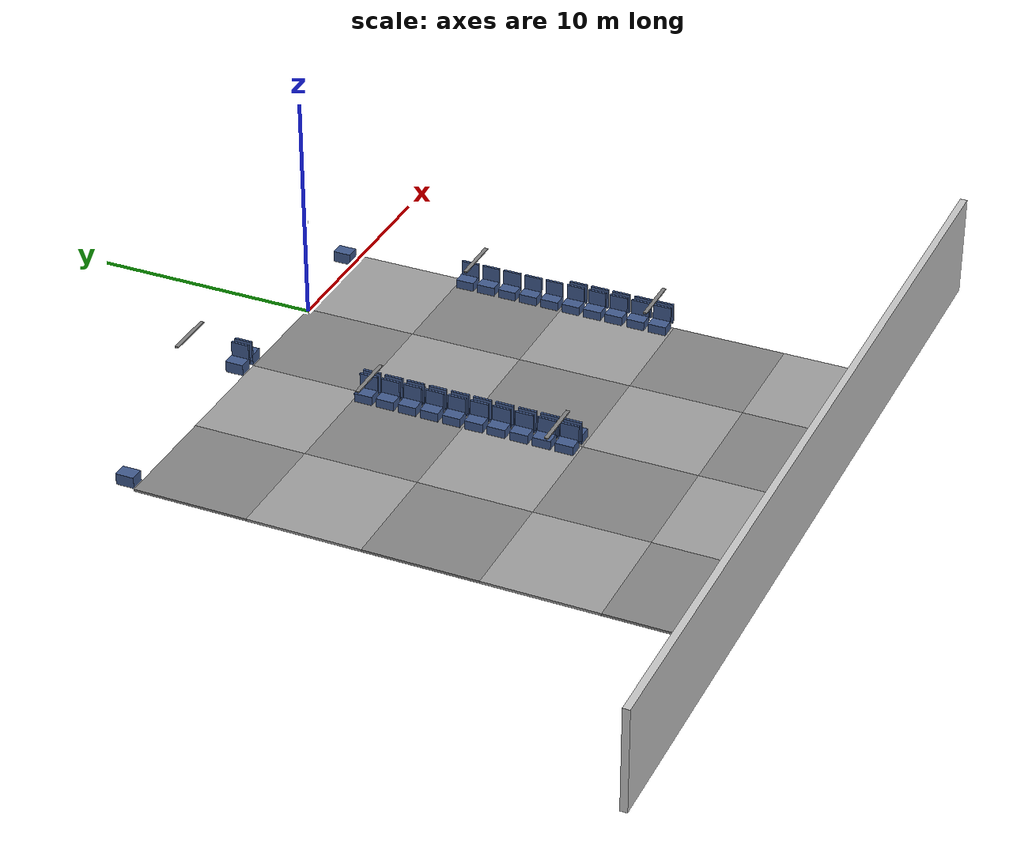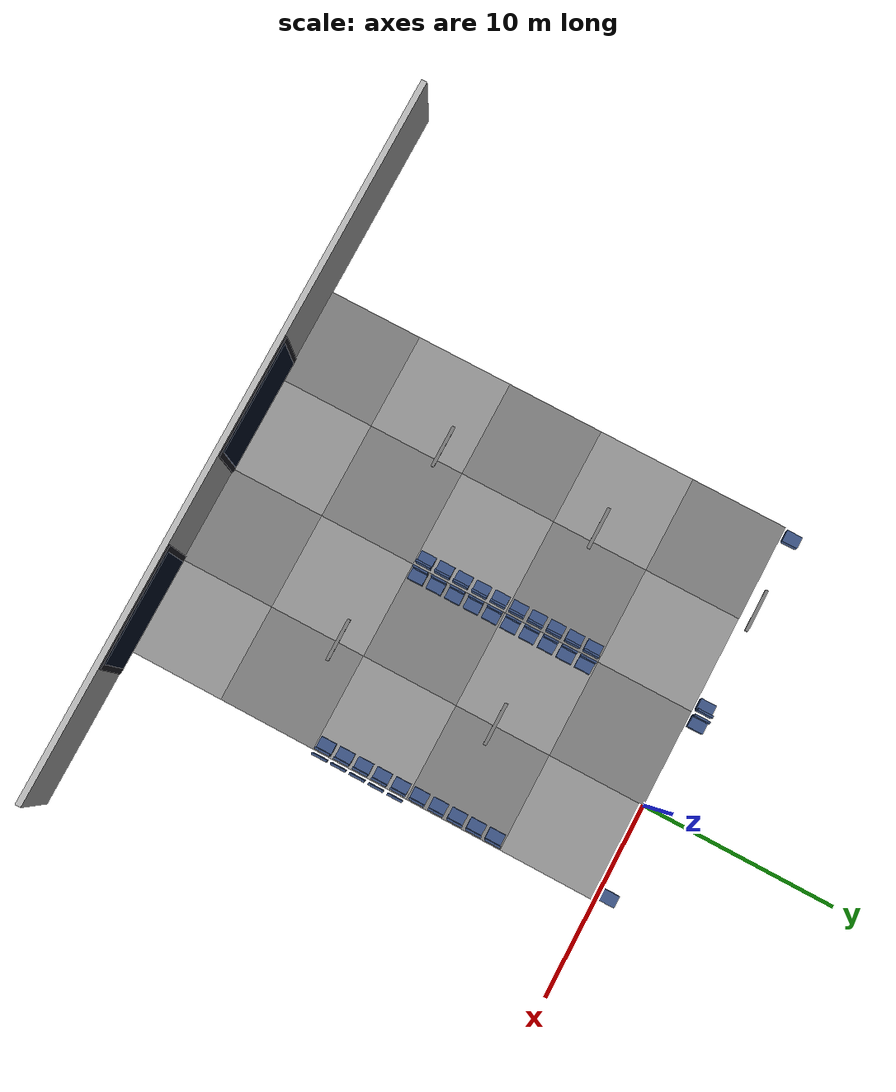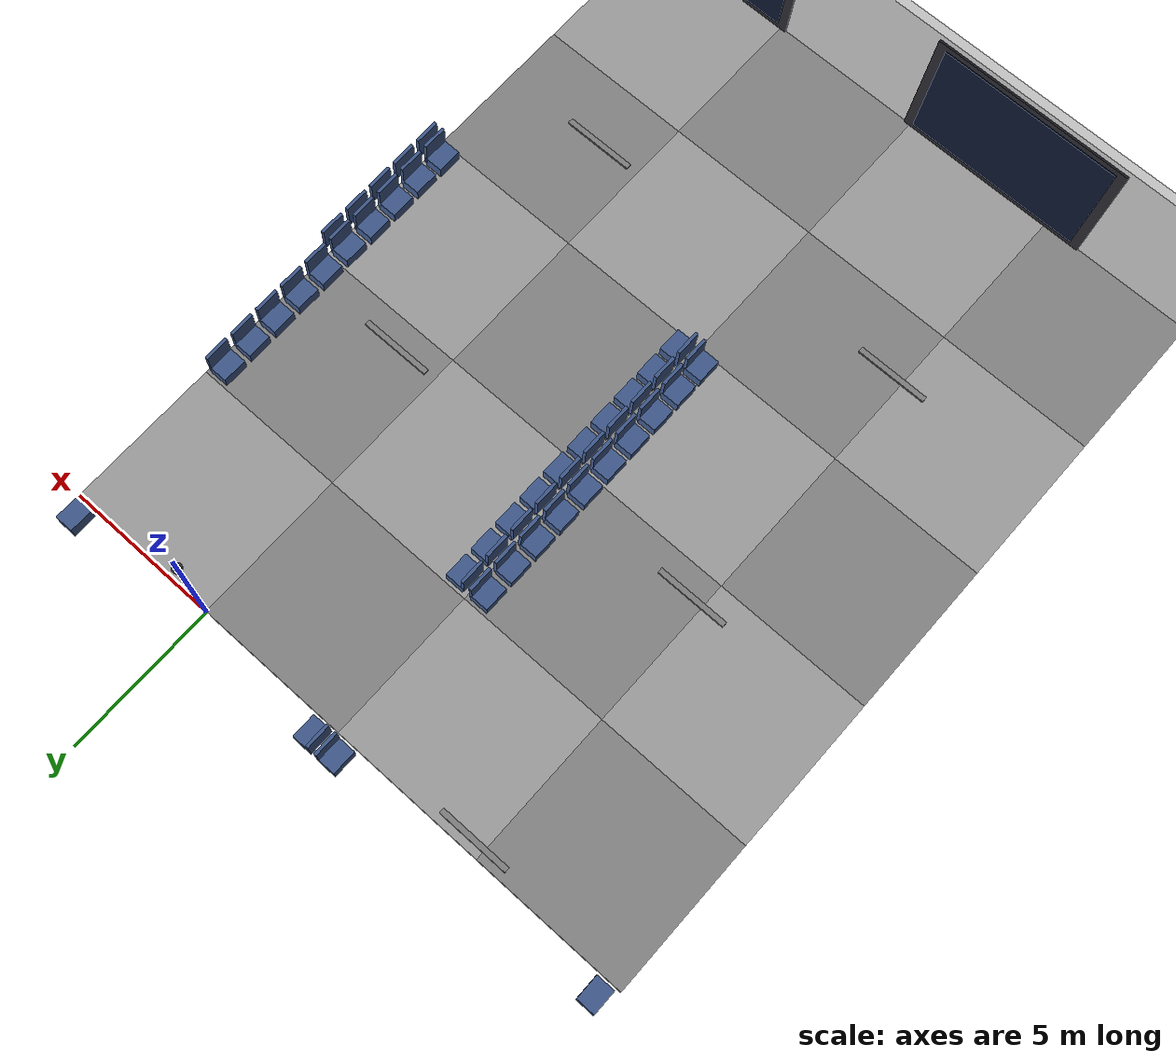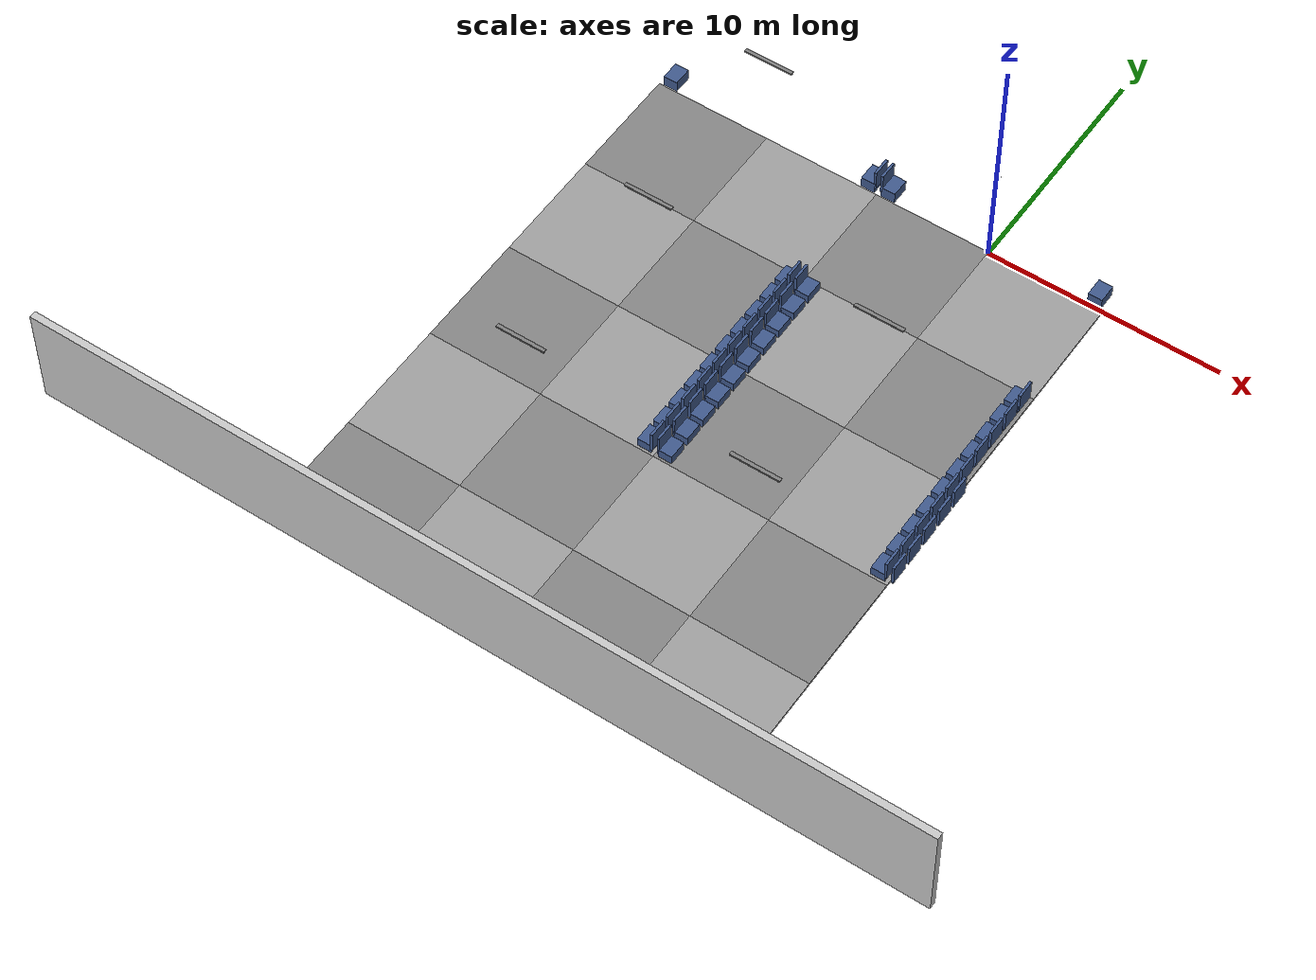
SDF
<sdf version="1.10">
 <world name="my_world">
  <model name="floor">
   <static>true</static>
   <pose>0 0 0.05 0 0 0</pose>
   <link name="link">
    <collision name="col">
     <geometry><box><size>50 50 0.1</size></box></geometry>
     <surface>
      <friction><ode><mu>0.8</mu><mu2>0.8</mu2></ode></friction>
      <contact><ode><kp>1000000.0</kp><kd>1.0</kd><max_vel>0.1</max_vel><min_depth>0.001</min_depth></ode></contact>
     </surface>
    </collision>
   </link>
  </model>
  <model name="vtile_2_0">
   <static>true</static>
   <pose>-12.5 -22.5 0.05 0 0 0</pose>
   <link name="link">
    <visual name="vis">
     <geometry><box><size>5 5 0.1</size></box></geometry>
     <material><ambient>0.52 0.52 0.52 1</ambient><diffuse>0.52 0.52 0.52 1</diffuse></material>
    </visual>
   </link>
  </model>
  <model name="vtile_2_1">
   <static>true</static>
   <pose>-12.5 -17.5 0.05 0 0 0</pose>
   <link name="link">
    <visual name="vis">
     <geometry><box><size>5 5 0.1</size></box></geometry>
     <material><ambient>0.62 0.62 0.62 1</ambient><diffuse>0.62 0.62 0.62 1</diffuse></material>
    </visual>
   </link>
  </model>
  <model name="vtile_2_2">
   <static>true</static>
   <pose>-12.5 -12.5 0.05 0 0 0</pose>
   <link name="link">
    <visual name="vis">
     <geometry><box><size>5 5 0.1</size></box></geometry>
     <material><ambient>0.52 0.52 0.52 1</ambient><diffuse>0.52 0.52 0.52 1</diffuse></material>
    </visual>
   </link>
  </model>
  <model name="vtile_2_3">
   <static>true</static>
   <pose>-12.5 -7.5 0.05 0 0 0</pose>
   <link name="link">
    <visual name="vis">
     <geometry><box><size>5 5 0.1</size></box></geometry>
     <material><ambient>0.62 0.62 0.62 1</ambient><diffuse>0.62 0.62 0.62 1</diffuse></material>
    </visual>
   </link>
  </model>
  <model name="vtile_2_4">
   <static>true</static>
   <pose>-12.5 -2.5 0.05 0 0 0</pose>
   <link name="link">
    <visual name="vis">
     <geometry><box><size>5 5 0.1</size></box></geometry>
     <material><ambient>0.52 0.52 0.52 1</ambient><diffuse>0.52 0.52 0.52 1</diffuse></material>
    </visual>
   </link>
  </model>
  <model name="vtile_3_0">
   <static>true</static>
   <pose>-7.5 -22.5 0.05 0 0 0</pose>
   <link name="link">
    <visual name="vis">
     <geometry><box><size>5 5 0.1</size></box></geometry>
     <material><ambient>0.62 0.62 0.62 1</ambient><diffuse>0.62 0.62 0.62 1</diffuse></material>
    </visual>
   </link>
  </model>
  <model name="vtile_3_1">
   <static>true</static>
   <pose>-7.5 -17.5 0.05 0 0 0</pose>
   <link name="link">
    <visual name="vis">
     <geometry><box><size>5 5 0.1</size></box></geometry>
     <material><ambient>0.52 0.52 0.52 1</ambient><diffuse>0.52 0.52 0.52 1</diffuse></material>
    </visual>
   </link>
  </model>
  <model name="vtile_3_2">
   <static>true</static>
   <pose>-7.5 -12.5 0.05 0 0 0</pose>
   <link name="link">
    <visual name="vis">
     <geometry><box><size>5 5 0.1</size></box></geometry>
     <material><ambient>0.62 0.62 0.62 1</ambient><diffuse>0.62 0.62 0.62 1</diffuse></material>
    </visual>
   </link>
  </model>
  <model name="vtile_3_3">
   <static>true</static>
   <pose>-7.5 -7.5 0.05 0 0 0</pose>
   <link name="link">
    <visual name="vis">
     <geometry><box><size>5 5 0.1</size></box></geometry>
     <material><ambient>0.52 0.52 0.52 1</ambient><diffuse>0.52 0.52 0.52 1</diffuse></material>
    </visual>
   </link>
  </model>
  <model name="vtile_3_4">
   <static>true</static>
   <pose>-7.5 -2.5 0.05 0 0 0</pose>
   <link name="link">
    <visual name="vis">
     <geometry><box><size>5 5 0.1</size></box></geometry>
     <material><ambient>0.62 0.62 0.62 1</ambient><diffuse>0.62 0.62 0.62 1</diffuse></material>
    </visual>
   </link>
  </model>
  <model name="vtile_4_0">
   <static>true</static>
   <pose>-2.5 -22.5 0.05 0 0 0</pose>
   <link name="link">
    <visual name="vis">
     <geometry><box><size>5 5 0.1</size></box></geometry>
     <material><ambient>0.52 0.52 0.52 1</ambient><diffuse>0.52 0.52 0.52 1</diffuse></material>
    </visual>
   </link>
  </model>
  <model name="vtile_4_1">
   <static>true</static>
   <pose>-2.5 -17.5 0.05 0 0 0</pose>
   <link name="link">
    <visual name="vis">
     <geometry><box><size>5 5 0.1</size></box></geometry>
     <material><ambient>0.62 0.62 0.62 1</ambient><diffuse>0.62 0.62 0.62 1</diffuse></material>
    </visual>
   </link>
  </model>
  <model name="vtile_4_2">
   <static>true</static>
   <pose>-2.5 -12.5 0.05 0 0 0</pose>
   <link name="link">
    <visual name="vis">
     <geometry><box><size>5 5 0.1</size></box></geometry>
     <material><ambient>0.52 0.52 0.52 1</ambient><diffuse>0.52 0.52 0.52 1</diffuse></material>
    </visual>
   </link>
  </model>
  <model name="vtile_4_3">
   <static>true</static>
   <pose>-2.5 -7.5 0.05 0 0 0</pose>
   <link name="link">
    <visual name="vis">
     <geometry><box><size>5 5 0.1</size></box></geometry>
     <material><ambient>0.62 0.62 0.62 1</ambient><diffuse>0.62 0.62 0.62 1</diffuse></material>
    </visual>
   </link>
  </model>
  <model name="vtile_4_4">
   <static>true</static>
   <pose>-2.5 -2.5 0.05 0 0 0</pose>
   <link name="link">
    <visual name="vis">
     <geometry><box><size>5 5 0.1</size></box></geometry>
     <material><ambient>0.52 0.52 0.52 1</ambient><diffuse>0.52 0.52 0.52 1</diffuse></material>
    </visual>
   </link>
  </model>
  <model name="vtile_5_0">
   <static>true</static>
   <pose>2.5 -22.5 0.05 0 0 0</pose>
   <link name="link">
    <visual name="vis">
     <geometry><box><size>5 5 0.1</size></box></geometry>
     <material><ambient>0.62 0.62 0.62 1</ambient><diffuse>0.62 0.62 0.62 1</diffuse></material>
    </visual>
   </link>
  </model>
  <model name="vtile_5_1">
   <static>true</static>
   <pose>2.5 -17.5 0.05 0 0 0</pose>
   <link name="link">
    <visual name="vis">
     <geometry><box><size>5 5 0.1</size></box></geometry>
     <material><ambient>0.52 0.52 0.52 1</ambient><diffuse>0.52 0.52 0.52 1</diffuse></material>
    </visual>
   </link>
  </model>
  <model name="vtile_5_2">
   <static>true</static>
   <pose>2.5 -12.5 0.05 0 0 0</pose>
   <link name="link">
    <visual name="vis">
     <geometry><box><size>5 5 0.1</size></box></geometry>
     <material><ambient>0.62 0.62 0.62 1</ambient><diffuse>0.62 0.62 0.62 1</diffuse></material>
    </visual>
   </link>
  </model>
  <model name="vtile_5_3">
   <static>true</static>
   <pose>2.5 -7.5 0.05 0 0 0</pose>
   <link name="link">
    <visual name="vis">
     <geometry><box><size>5 5 0.1</size></box></geometry>
     <material><ambient>0.52 0.52 0.52 1</ambient><diffuse>0.52 0.52 0.52 1</diffuse></material>
    </visual>
   </link>
  </model>
  <model name="vtile_5_4">
   <static>true</static>
   <pose>2.5 -2.5 0.05 0 0 0</pose>
   <link name="link">
    <visual name="vis">
     <geometry><box><size>5 5 0.1</size></box></geometry>
     <material><ambient>0.62 0.62 0.62 1</ambient><diffuse>0.62 0.62 0.62 1</diffuse></material>
    </visual>
   </link>
  </model>
  <model name="wall_south_w">
   <static>true</static>
   <pose>-5.925 -25 2.25 0 0 0</pose>
   <link name="link">
    <collision name="col"><geometry><box><size>38.15 0.3 4.5</size></box></geometry></collision>
    <visual name="vis">
     <geometry><box><size>38.15 0.3 4.5</size></box></geometry>
     <material><ambient>0.78 0.78 0.78 1</ambient><diffuse>0.78 0.78 0.78 1</diffuse></material>
    </visual>
   </link>
  </model>
  <model name="fid_2_frame">
   <static>true</static>
   <pose>-8 -24.85 2.2 0 0 0</pose>
   <link name="link">
    <collision name="col"><geometry><box><size>6.4 0.12 4.2</size></box></geometry></collision>
    <visual name="vis">
     <geometry><box><size>6.4 0.12 4.2</size></box></geometry>
     <material><ambient>0.15 0.15 0.18 1</ambient><diffuse>0.15 0.15 0.18 1</diffuse></material>
    </visual>
   </link>
  </model>
  <model name="fid_2_screen">
   <static>true</static>
   <pose>-8 -24.78 2.2 0 0 0</pose>
   <link name="link">
    <visual name="vis">
     <geometry><box><size>5.8 0.04 3.8</size></box></geometry>
     <material>
      <ambient>0.03 0.08 0.18 1</ambient>
      <diffuse>0.03 0.08 0.18 1</diffuse>
      <emissive>0.04 0.12 0.30 1</emissive>
     </material>
    </visual>
   </link>
  </model>
  <model name="fid_3_frame">
   <static>true</static>
   <pose>3 -24.85 2.2 0 0 0</pose>
   <link name="link">
    <collision name="col"><geometry><box><size>6.4 0.12 4.2</size></box></geometry></collision>
    <visual name="vis">
     <geometry><box><size>6.4 0.12 4.2</size></box></geometry>
     <material><ambient>0.15 0.15 0.18 1</ambient><diffuse>0.15 0.15 0.18 1</diffuse></material>
    </visual>
   </link>
  </model>
  <model name="fid_3_screen">
   <static>true</static>
   <pose>3 -24.78 2.2 0 0 0</pose>
   <link name="link">
    <visual name="vis">
     <geometry><box><size>5.8 0.04 3.8</size></box></geometry>
     <material>
      <ambient>0.03 0.08 0.18 1</ambient>
      <diffuse>0.03 0.08 0.18 1</diffuse>
      <emissive>0.04 0.12 0.30 1</emissive>
     </material>
    </visual>
   </link>
  </model>
  <model name="lamp_a_n10_strip">
   <static>true</static>
   <pose>-10 -8 4.42 0 0 0</pose>
   <link name="link">
    <visual name="strip">
     <geometry><box><size>2.0 0.12 0.04</size></box></geometry>
     <material>
      <ambient>0.95 0.95 0.88 1</ambient>
      <diffuse>0.95 0.95 0.88 1</diffuse>
      <emissive>0.35 0.35 0.30 1</emissive>
     </material>
    </visual>
    <visual name="housing">
     <pose>0 0 0.03 0 0 0</pose>
     <geometry><box><size>2.1 0.16 0.06</size></box></geometry>
     <material><ambient>0.5 0.5 0.5 1</ambient><diffuse>0.5 0.5 0.5 1</diffuse></material>
    </visual>
   </link>
  </model>
  <model name="lamp_a_0_strip">
   <static>true</static>
   <pose>0 -8 4.42 0 0 0</pose>
   <link name="link">
    <visual name="strip">
     <geometry><box><size>2.0 0.12 0.04</size></box></geometry>
     <material>
      <ambient>0.95 0.95 0.88 1</ambient>
      <diffuse>0.95 0.95 0.88 1</diffuse>
      <emissive>0.35 0.35 0.30 1</emissive>
     </material>
    </visual>
    <visual name="housing">
     <pose>0 0 0.03 0 0 0</pose>
     <geometry><box><size>2.1 0.16 0.06</size></box></geometry>
     <material><ambient>0.5 0.5 0.5 1</ambient><diffuse>0.5 0.5 0.5 1</diffuse></material>
    </visual>
   </link>
  </model>
  <model name="lamp_b_n10_strip">
   <static>true</static>
   <pose>-10 0 4.42 0 0 0</pose>
   <link name="link">
    <visual name="strip">
     <geometry><box><size>2.0 0.12 0.04</size></box></geometry>
     <material>
      <ambient>0.95 0.95 0.88 1</ambient>
      <diffuse>0.95 0.95 0.88 1</diffuse>
      <emissive>0.35 0.35 0.30 1</emissive>
     </material>
    </visual>
    <visual name="housing">
     <pose>0 0 0.03 0 0 0</pose>
     <geometry><box><size>2.1 0.16 0.06</size></box></geometry>
     <material><ambient>0.5 0.5 0.5 1</ambient><diffuse>0.5 0.5 0.5 1</diffuse></material>
    </visual>
   </link>
  </model>
  <model name="lamp_d_n10_strip">
   <static>true</static>
   <pose>-10 -16 4.42 0 0 0</pose>
   <link name="link">
    <visual name="strip">
     <geometry><box><size>2.0 0.12 0.04</size></box></geometry>
     <material>
      <ambient>0.95 0.95 0.88 1</ambient>
      <diffuse>0.95 0.95 0.88 1</diffuse>
      <emissive>0.35 0.35 0.30 1</emissive>
     </material>
    </visual>
    <visual name="housing">
     <pose>0 0 0.03 0 0 0</pose>
     <geometry><box><size>2.1 0.16 0.06</size></box></geometry>
     <material><ambient>0.5 0.5 0.5 1</ambient><diffuse>0.5 0.5 0.5 1</diffuse></material>
    </visual>
   </link>
  </model>
  <model name="lamp_d_0_strip">
   <static>true</static>
   <pose>0 -16 4.42 0 0 0</pose>
   <link name="link">
    <visual name="strip">
     <geometry><box><size>2.0 0.12 0.04</size></box></geometry>
     <material>
      <ambient>0.95 0.95 0.88 1</ambient>
      <diffuse>0.95 0.95 0.88 1</diffuse>
      <emissive>0.35 0.35 0.30 1</emissive>
     </material>
    </visual>
    <visual name="housing">
     <pose>0 0 0.03 0 0 0</pose>
     <geometry><box><size>2.1 0.16 0.06</size></box></geometry>
     <material><ambient>0.5 0.5 0.5 1</ambient><diffuse>0.5 0.5 0.5 1</diffuse></material>
    </visual>
   </link>
  </model>
  <model name="camera_center_dome">
   <static>true</static>
   <pose>0 0 4.38 0 0 0</pose>
   <link name="link">
    <visual name="dome_body">
     <geometry><sphere><radius>0.14</radius></sphere></geometry>
     <material><ambient>0.08 0.08 0.08 1</ambient><diffuse>0.08 0.08 0.08 1</diffuse></material>
    </visual>
    <visual name="dome_ring">
     <pose>0 0 0.02 0 0 0</pose>
     <geometry><cylinder><radius>0.15</radius><length>0.03</length></cylinder></geometry>
     <material><ambient>0.2 0.2 0.2 1</ambient><diffuse>0.2 0.2 0.2 1</diffuse></material>
    </visual>
    <visual name="dome_mount">
     <pose>0 0 0.16 0 0 0</pose>
     <geometry><cylinder><radius>0.04</radius><length>0.1</length></cylinder></geometry>
     <material><ambient>0.15 0.15 0.15 1</ambient><diffuse>0.15 0.15 0.15 1</diffuse></material>
    </visual>
    <sensor name="camera_center_down" type="camera">
     <pose>0 0 0 0 1.5708 0</pose>
     <topic>/surveillance/center/down</topic>
     <update_rate>10</update_rate>
     <camera>
      <horizontal_fov>1.5708</horizontal_fov>
      <image><width>640</width><height>640</height></image>
      <clip><near>0.1</near><far>50.0</far></clip>
     </camera>
     <always_on>true</always_on>
     <visualize>false</visualize>
    </sensor>
    <sensor name="camera_center_north" type="camera">
     <pose>0 0 0 0 0.7854 0</pose>
     <topic>/surveillance/center/north</topic>
     <update_rate>10</update_rate>
     <camera>
      <horizontal_fov>1.7708</horizontal_fov>
      <image><width>640</width><height>480</height></image>
      <clip><near>0.1</near><far>50.0</far></clip>
     </camera>
     <always_on>true</always_on>
     <visualize>false</visualize>
    </sensor>
    <sensor name="camera_center_south" type="camera">
     <pose>0 0 0 0 0.7854 3.1416</pose>
     <topic>/surveillance/center/south</topic>
     <update_rate>10</update_rate>
     <camera>
      <horizontal_fov>1.7708</horizontal_fov>
      <image><width>640</width><height>480</height></image>
      <clip><near>0.1</near><far>50.0</far></clip>
     </camera>
     <always_on>true</always_on>
     <visualize>false</visualize>
    </sensor>
    <sensor name="camera_center_east" type="camera">
     <pose>0 0 0 0 0.7854 -1.5708</pose>
     <topic>/surveillance/center/east</topic>
     <update_rate>10</update_rate>
     <camera>
      <horizontal_fov>1.7708</horizontal_fov>
      <image><width>640</width><height>480</height></image>
      <clip><near>0.1</near><far>50.0</far></clip>
     </camera>
     <always_on>true</always_on>
     <visualize>false</visualize>
    </sensor>
    <sensor name="camera_center_west" type="camera">
     <pose>0 0 0 0 0.7854 1.5708</pose>
     <topic>/surveillance/center/west</topic>
     <update_rate>10</update_rate>
     <camera>
      <horizontal_fov>1.7708</horizontal_fov>
      <image><width>640</width><height>480</height></image>
      <clip><near>0.1</near><far>50.0</far></clip>
     </camera>
     <always_on>true</always_on>
     <visualize>false</visualize>
    </sensor>
   </link>
  </model>
  <model name="cluster_1_a_0">
   <static>true</static>
   <pose>-5.45 -14.50 0.25 0 0 0</pose>
   <link name="link">
    <collision name="col"><geometry><box><size>0.6 0.8 0.5</size></box></geometry></collision>
    <visual name="vis">
     <geometry><box><size>0.6 0.8 0.5</size></box></geometry>
     <material><ambient>0.25 0.35 0.55 1</ambient><diffuse>0.25 0.35 0.55 1</diffuse></material>
    </visual>
   </link>
  </model>
  <model name="cluster_1_a_0_back">
   <static>true</static>
   <pose>-5.15 -14.50 0.7 0 0 0</pose>
   <link name="link">
    <collision name="col"><geometry><box><size>0.1 0.8 0.9</size></box></geometry></collision>
    <visual name="vis">
     <geometry><box><size>0.1 0.8 0.9</size></box></geometry>
     <material><ambient>0.25 0.35 0.55 1</ambient><diffuse>0.25 0.35 0.55 1</diffuse></material>
    </visual>
   </link>
  </model>
  <model name="cluster_1_b_0">
   <static>true</static>
   <pose>-4.55 -14.50 0.25 0 0 0</pose>
   <link name="link">
    <collision name="col"><geometry><box><size>0.6 0.8 0.5</size></box></geometry></collision>
    <visual name="vis">
     <geometry><box><size>0.6 0.8 0.5</size></box></geometry>
     <material><ambient>0.25 0.35 0.55 1</ambient><diffuse>0.25 0.35 0.55 1</diffuse></material>
    </visual>
   </link>
  </model>
  <model name="cluster_1_b_0_back">
   <static>true</static>
   <pose>-4.85 -14.50 0.7 0 0 0</pose>
   <link name="link">
    <collision name="col"><geometry><box><size>0.1 0.8 0.9</size></box></geometry></collision>
    <visual name="vis">
     <geometry><box><size>0.1 0.8 0.9</size></box></geometry>
     <material><ambient>0.25 0.35 0.55 1</ambient><diffuse>0.25 0.35 0.55 1</diffuse></material>
    </visual>
   </link>
  </model>
  <model name="cluster_1_a_1">
   <static>true</static>
   <pose>-5.45 -13.50 0.25 0 0 0</pose>
   <link name="link">
    <collision name="col"><geometry><box><size>0.6 0.8 0.5</size></box></geometry></collision>
    <visual name="vis">
     <geometry><box><size>0.6 0.8 0.5</size></box></geometry>
     <material><ambient>0.25 0.35 0.55 1</ambient><diffuse>0.25 0.35 0.55 1</diffuse></material>
    </visual>
   </link>
  </model>
  <model name="cluster_1_a_1_back">
   <static>true</static>
   <pose>-5.15 -13.50 0.7 0 0 0</pose>
   <link name="link">
    <collision name="col"><geometry><box><size>0.1 0.8 0.9</size></box></geometry></collision>
    <visual name="vis">
     <geometry><box><size>0.1 0.8 0.9</size></box></geometry>
     <material><ambient>0.25 0.35 0.55 1</ambient><diffuse>0.25 0.35 0.55 1</diffuse></material>
    </visual>
   </link>
  </model>
  <model name="cluster_1_b_1">
   <static>true</static>
   <pose>-4.55 -13.50 0.25 0 0 0</pose>
   <link name="link">
    <collision name="col"><geometry><box><size>0.6 0.8 0.5</size></box></geometry></collision>
    <visual name="vis">
     <geometry><box><size>0.6 0.8 0.5</size></box></geometry>
     <material><ambient>0.25 0.35 0.55 1</ambient><diffuse>0.25 0.35 0.55 1</diffuse></material>
    </visual>
   </link>
  </model>
  <model name="cluster_1_b_1_back">
   <static>true</static>
   <pose>-4.85 -13.50 0.7 0 0 0</pose>
   <link name="link">
    <collision name="col"><geometry><box><size>0.1 0.8 0.9</size></box></geometry></collision>
    <visual name="vis">
     <geometry><box><size>0.1 0.8 0.9</size></box></geometry>
     <material><ambient>0.25 0.35 0.55 1</ambient><diffuse>0.25 0.35 0.55 1</diffuse></material>
    </visual>
   </link>
  </model>
  <model name="cluster_1_a_2">
   <static>true</static>
   <pose>-5.45 -12.50 0.25 0 0 0</pose>
   <link name="link">
    <collision name="col"><geometry><box><size>0.6 0.8 0.5</size></box></geometry></collision>
    <visual name="vis">
     <geometry><box><size>0.6 0.8 0.5</size></box></geometry>
     <material><ambient>0.25 0.35 0.55 1</ambient><diffuse>0.25 0.35 0.55 1</diffuse></material>
    </visual>
   </link>
  </model>
  <model name="cluster_1_a_2_back">
   <static>true</static>
   <pose>-5.15 -12.50 0.7 0 0 0</pose>
   <link name="link">
    <collision name="col"><geometry><box><size>0.1 0.8 0.9</size></box></geometry></collision>
    <visual name="vis">
     <geometry><box><size>0.1 0.8 0.9</size></box></geometry>
     <material><ambient>0.25 0.35 0.55 1</ambient><diffuse>0.25 0.35 0.55 1</diffuse></material>
    </visual>
   </link>
  </model>
  <model name="cluster_1_b_2">
   <static>true</static>
   <pose>-4.55 -12.50 0.25 0 0 0</pose>
   <link name="link">
    <collision name="col"><geometry><box><size>0.6 0.8 0.5</size></box></geometry></collision>
    <visual name="vis">
     <geometry><box><size>0.6 0.8 0.5</size></box></geometry>
     <material><ambient>0.25 0.35 0.55 1</ambient><diffuse>0.25 0.35 0.55 1</diffuse></material>
    </visual>
   </link>
  </model>
  <model name="cluster_1_b_2_back">
   <static>true</static>
   <pose>-4.85 -12.50 0.7 0 0 0</pose>
   <link name="link">
    <collision name="col"><geometry><box><size>0.1 0.8 0.9</size></box></geometry></collision>
    <visual name="vis">
     <geometry><box><size>0.1 0.8 0.9</size></box></geometry>
     <material><ambient>0.25 0.35 0.55 1</ambient><diffuse>0.25 0.35 0.55 1</diffuse></material>
    </visual>
   </link>
  </model>
  <model name="cluster_1_a_3">
   <static>true</static>
   <pose>-5.45 -11.50 0.25 0 0 0</pose>
   <link name="link">
    <collision name="col"><geometry><box><size>0.6 0.8 0.5</size></box></geometry></collision>
    <visual name="vis">
     <geometry><box><size>0.6 0.8 0.5</size></box></geometry>
     <material><ambient>0.25 0.35 0.55 1</ambient><diffuse>0.25 0.35 0.55 1</diffuse></material>
    </visual>
   </link>
  </model>
  <model name="cluster_1_a_3_back">
   <static>true</static>
   <pose>-5.15 -11.50 0.7 0 0 0</pose>
   <link name="link">
    <collision name="col"><geometry><box><size>0.1 0.8 0.9</size></box></geometry></collision>
    <visual name="vis">
     <geometry><box><size>0.1 0.8 0.9</size></box></geometry>
     <material><ambient>0.25 0.35 0.55 1</ambient><diffuse>0.25 0.35 0.55 1</diffuse></material>
    </visual>
   </link>
  </model>
  <model name="cluster_1_b_3">
   <static>true</static>
   <pose>-4.55 -11.50 0.25 0 0 0</pose>
   <link name="link">
    <collision name="col"><geometry><box><size>0.6 0.8 0.5</size></box></geometry></collision>
    <visual name="vis">
     <geometry><box><size>0.6 0.8 0.5</size></box></geometry>
     <material><ambient>0.25 0.35 0.55 1</ambient><diffuse>0.25 0.35 0.55 1</diffuse></material>
    </visual>
   </link>
  </model>
  <model name="cluster_1_b_3_back">
   <static>true</static>
   <pose>-4.85 -11.50 0.7 0 0 0</pose>
   <link name="link">
    <collision name="col"><geometry><box><size>0.1 0.8 0.9</size></box></geometry></collision>
    <visual name="vis">
     <geometry><box><size>0.1 0.8 0.9</size></box></geometry>
     <material><ambient>0.25 0.35 0.55 1</ambient><diffuse>0.25 0.35 0.55 1</diffuse></material>
    </visual>
   </link>
  </model>
  <model name="cluster_1_a_4">
   <static>true</static>
   <pose>-5.45 -10.50 0.25 0 0 0</pose>
   <link name="link">
    <collision name="col"><geometry><box><size>0.6 0.8 0.5</size></box></geometry></collision>
    <visual name="vis">
     <geometry><box><size>0.6 0.8 0.5</size></box></geometry>
     <material><ambient>0.25 0.35 0.55 1</ambient><diffuse>0.25 0.35 0.55 1</diffuse></material>
    </visual>
   </link>
  </model>
  <model name="cluster_1_a_4_back">
   <static>true</static>
   <pose>-5.15 -10.50 0.7 0 0 0</pose>
   <link name="link">
    <collision name="col"><geometry><box><size>0.1 0.8 0.9</size></box></geometry></collision>
    <visual name="vis">
     <geometry><box><size>0.1 0.8 0.9</size></box></geometry>
     <material><ambient>0.25 0.35 0.55 1</ambient><diffuse>0.25 0.35 0.55 1</diffuse></material>
    </visual>
   </link>
  </model>
  <model name="cluster_1_b_4">
   <static>true</static>
   <pose>-4.55 -10.50 0.25 0 0 0</pose>
   <link name="link">
    <collision name="col"><geometry><box><size>0.6 0.8 0.5</size></box></geometry></collision>
    <visual name="vis">
     <geometry><box><size>0.6 0.8 0.5</size></box></geometry>
     <material><ambient>0.25 0.35 0.55 1</ambient><diffuse>0.25 0.35 0.55 1</diffuse></material>
    </visual>
   </link>
  </model>
  <model name="cluster_1_b_4_back">
   <static>true</static>
   <pose>-4.85 -10.50 0.7 0 0 0</pose>
   <link name="link">
    <collision name="col"><geometry><box><size>0.1 0.8 0.9</size></box></geometry></collision>
    <visual name="vis">
     <geometry><box><size>0.1 0.8 0.9</size></box></geometry>
     <material><ambient>0.25 0.35 0.55 1</ambient><diffuse>0.25 0.35 0.55 1</diffuse></material>
    </visual>
   </link>
  </model>
  <model name="cluster_1_a_5">
   <static>true</static>
   <pose>-5.45 -9.50 0.25 0 0 0</pose>
   <link name="link">
    <collision name="col"><geometry><box><size>0.6 0.8 0.5</size></box></geometry></collision>
    <visual name="vis">
     <geometry><box><size>0.6 0.8 0.5</size></box></geometry>
     <material><ambient>0.25 0.35 0.55 1</ambient><diffuse>0.25 0.35 0.55 1</diffuse></material>
    </visual>
   </link>
  </model>
  <model name="cluster_1_a_5_back">
   <static>true</static>
   <pose>-5.15 -9.50 0.7 0 0 0</pose>
   <link name="link">
    <collision name="col"><geometry><box><size>0.1 0.8 0.9</size></box></geometry></collision>
    <visual name="vis">
     <geometry><box><size>0.1 0.8 0.9</size></box></geometry>
     <material><ambient>0.25 0.35 0.55 1</ambient><diffuse>0.25 0.35 0.55 1</diffuse></material>
    </visual>
   </link>
  </model>
  <model name="cluster_1_b_5">
   <static>true</static>
   <pose>-4.55 -9.50 0.25 0 0 0</pose>
   <link name="link">
    <collision name="col"><geometry><box><size>0.6 0.8 0.5</size></box></geometry></collision>
    <visual name="vis">
     <geometry><box><size>0.6 0.8 0.5</size></box></geometry>
     <material><ambient>0.25 0.35 0.55 1</ambient><diffuse>0.25 0.35 0.55 1</diffuse></material>
    </visual>
   </link>
  </model>
  <model name="cluster_1_b_5_back">
   <static>true</static>
   <pose>-4.85 -9.50 0.7 0 0 0</pose>
   <link name="link">
    <collision name="col"><geometry><box><size>0.1 0.8 0.9</size></box></geometry></collision>
    <visual name="vis">
     <geometry><box><size>0.1 0.8 0.9</size></box></geometry>
     <material><ambient>0.25 0.35 0.55 1</ambient><diffuse>0.25 0.35 0.55 1</diffuse></material>
    </visual>
   </link>
  </model>
  <model name="cluster_1_a_6">
   <static>true</static>
   <pose>-5.45 -8.50 0.25 0 0 0</pose>
   <link name="link">
    <collision name="col"><geometry><box><size>0.6 0.8 0.5</size></box></geometry></collision>
    <visual name="vis">
     <geometry><box><size>0.6 0.8 0.5</size></box></geometry>
     <material><ambient>0.25 0.35 0.55 1</ambient><diffuse>0.25 0.35 0.55 1</diffuse></material>
    </visual>
   </link>
  </model>
  <model name="cluster_1_a_6_back">
   <static>true</static>
   <pose>-5.15 -8.50 0.7 0 0 0</pose>
   <link name="link">
    <collision name="col"><geometry><box><size>0.1 0.8 0.9</size></box></geometry></collision>
    <visual name="vis">
     <geometry><box><size>0.1 0.8 0.9</size></box></geometry>
     <material><ambient>0.25 0.35 0.55 1</ambient><diffuse>0.25 0.35 0.55 1</diffuse></material>
    </visual>
   </link>
  </model>
  <model name="cluster_1_b_6">
   <static>true</static>
   <pose>-4.55 -8.50 0.25 0 0 0</pose>
   <link name="link">
    <collision name="col"><geometry><box><size>0.6 0.8 0.5</size></box></geometry></collision>
    <visual name="vis">
     <geometry><box><size>0.6 0.8 0.5</size></box></geometry>
     <material><ambient>0.25 0.35 0.55 1</ambient><diffuse>0.25 0.35 0.55 1</diffuse></material>
    </visual>
   </link>
  </model>
  <model name="cluster_1_b_6_back">
   <static>true</static>
   <pose>-4.85 -8.50 0.7 0 0 0</pose>
   <link name="link">
    <collision name="col"><geometry><box><size>0.1 0.8 0.9</size></box></geometry></collision>
    <visual name="vis">
     <geometry><box><size>0.1 0.8 0.9</size></box></geometry>
     <material><ambient>0.25 0.35 0.55 1</ambient><diffuse>0.25 0.35 0.55 1</diffuse></material>
    </visual>
   </link>
  </model>
  <model name="cluster_1_a_7">
   <static>true</static>
   <pose>-5.45 -7.50 0.25 0 0 0</pose>
   <link name="link">
    <collision name="col"><geometry><box><size>0.6 0.8 0.5</size></box></geometry></collision>
    <visual name="vis">
     <geometry><box><size>0.6 0.8 0.5</size></box></geometry>
     <material><ambient>0.25 0.35 0.55 1</ambient><diffuse>0.25 0.35 0.55 1</diffuse></material>
    </visual>
   </link>
  </model>
  <model name="cluster_1_a_7_back">
   <static>true</static>
   <pose>-5.15 -7.50 0.7 0 0 0</pose>
   <link name="link">
    <collision name="col"><geometry><box><size>0.1 0.8 0.9</size></box></geometry></collision>
    <visual name="vis">
     <geometry><box><size>0.1 0.8 0.9</size></box></geometry>
     <material><ambient>0.25 0.35 0.55 1</ambient><diffuse>0.25 0.35 0.55 1</diffuse></material>
    </visual>
   </link>
  </model>
  <model name="cluster_1_b_7">
   <static>true</static>
   <pose>-4.55 -7.50 0.25 0 0 0</pose>
   <link name="link">
    <collision name="col"><geometry><box><size>0.6 0.8 0.5</size></box></geometry></collision>
    <visual name="vis">
     <geometry><box><size>0.6 0.8 0.5</size></box></geometry>
     <material><ambient>0.25 0.35 0.55 1</ambient><diffuse>0.25 0.35 0.55 1</diffuse></material>
    </visual>
   </link>
  </model>
  <model name="cluster_1_b_7_back">
   <static>true</static>
   <pose>-4.85 -7.50 0.7 0 0 0</pose>
   <link name="link">
    <collision name="col"><geometry><box><size>0.1 0.8 0.9</size></box></geometry></collision>
    <visual name="vis">
     <geometry><box><size>0.1 0.8 0.9</size></box></geometry>
     <material><ambient>0.25 0.35 0.55 1</ambient><diffuse>0.25 0.35 0.55 1</diffuse></material>
    </visual>
   </link>
  </model>
  <model name="cluster_1_a_8">
   <static>true</static>
   <pose>-5.45 -6.50 0.25 0 0 0</pose>
   <link name="link">
    <collision name="col"><geometry><box><size>0.6 0.8 0.5</size></box></geometry></collision>
    <visual name="vis">
     <geometry><box><size>0.6 0.8 0.5</size></box></geometry>
     <material><ambient>0.25 0.35 0.55 1</ambient><diffuse>0.25 0.35 0.55 1</diffuse></material>
    </visual>
   </link>
  </model>
  <model name="cluster_1_a_8_back">
   <static>true</static>
   <pose>-5.15 -6.50 0.7 0 0 0</pose>
   <link name="link">
    <collision name="col"><geometry><box><size>0.1 0.8 0.9</size></box></geometry></collision>
    <visual name="vis">
     <geometry><box><size>0.1 0.8 0.9</size></box></geometry>
     <material><ambient>0.25 0.35 0.55 1</ambient><diffuse>0.25 0.35 0.55 1</diffuse></material>
    </visual>
   </link>
  </model>
  <model name="cluster_1_b_8">
   <static>true</static>
   <pose>-4.55 -6.50 0.25 0 0 0</pose>
   <link name="link">
    <collision name="col"><geometry><box><size>0.6 0.8 0.5</size></box></geometry></collision>
    <visual name="vis">
     <geometry><box><size>0.6 0.8 0.5</size></box></geometry>
     <material><ambient>0.25 0.35 0.55 1</ambient><diffuse>0.25 0.35 0.55 1</diffuse></material>
    </visual>
   </link>
  </model>
  <model name="cluster_1_b_8_back">
   <static>true</static>
   <pose>-4.85 -6.50 0.7 0 0 0</pose>
   <link name="link">
    <collision name="col"><geometry><box><size>0.1 0.8 0.9</size></box></geometry></collision>
    <visual name="vis">
     <geometry><box><size>0.1 0.8 0.9</size></box></geometry>
     <material><ambient>0.25 0.35 0.55 1</ambient><diffuse>0.25 0.35 0.55 1</diffuse></material>
    </visual>
   </link>
  </model>
  <model name="cluster_1_a_9">
   <static>true</static>
   <pose>-5.45 -5.50 0.25 0 0 0</pose>
   <link name="link">
    <collision name="col"><geometry><box><size>0.6 0.8 0.5</size></box></geometry></collision>
    <visual name="vis">
     <geometry><box><size>0.6 0.8 0.5</size></box></geometry>
     <material><ambient>0.25 0.35 0.55 1</ambient><diffuse>0.25 0.35 0.55 1</diffuse></material>
    </visual>
   </link>
  </model>
  <model name="cluster_1_a_9_back">
   <static>true</static>
   <pose>-5.15 -5.50 0.7 0 0 0</pose>
   <link name="link">
    <collision name="col"><geometry><box><size>0.1 0.8 0.9</size></box></geometry></collision>
    <visual name="vis">
     <geometry><box><size>0.1 0.8 0.9</size></box></geometry>
     <material><ambient>0.25 0.35 0.55 1</ambient><diffuse>0.25 0.35 0.55 1</diffuse></material>
    </visual>
   </link>
  </model>
  <model name="cluster_1_b_9">
   <static>true</static>
   <pose>-4.55 -5.50 0.25 0 0 0</pose>
   <link name="link">
    <collision name="col"><geometry><box><size>0.6 0.8 0.5</size></box></geometry></collision>
    <visual name="vis">
     <geometry><box><size>0.6 0.8 0.5</size></box></geometry>
     <material><ambient>0.25 0.35 0.55 1</ambient><diffuse>0.25 0.35 0.55 1</diffuse></material>
    </visual>
   </link>
  </model>
  <model name="cluster_1_b_9_back">
   <static>true</static>
   <pose>-4.85 -5.50 0.7 0 0 0</pose>
   <link name="link">
    <collision name="col"><geometry><box><size>0.1 0.8 0.9</size></box></geometry></collision>
    <visual name="vis">
     <geometry><box><size>0.1 0.8 0.9</size></box></geometry>
     <material><ambient>0.25 0.35 0.55 1</ambient><diffuse>0.25 0.35 0.55 1</diffuse></material>
    </visual>
   </link>
  </model>
  <model name="cluster_2_a_0">
   <static>true</static>
   <pose>4.55 -14.50 0.25 0 0 0</pose>
   <link name="link">
    <collision name="col"><geometry><box><size>0.6 0.8 0.5</size></box></geometry></collision>
    <visual name="vis">
     <geometry><box><size>0.6 0.8 0.5</size></box></geometry>
     <material><ambient>0.25 0.35 0.55 1</ambient><diffuse>0.25 0.35 0.55 1</diffuse></material>
    </visual>
   </link>
  </model>
  <model name="cluster_2_a_0_back">
   <static>true</static>
   <pose>4.85 -14.50 0.7 0 0 0</pose>
   <link name="link">
    <collision name="col"><geometry><box><size>0.1 0.8 0.9</size></box></geometry></collision>
    <visual name="vis">
     <geometry><box><size>0.1 0.8 0.9</size></box></geometry>
     <material><ambient>0.25 0.35 0.55 1</ambient><diffuse>0.25 0.35 0.55 1</diffuse></material>
    </visual>
   </link>
  </model>
  <model name="cluster_2_b_0_back">
   <static>true</static>
   <pose>5.15 -14.50 0.7 0 0 0</pose>
   <link name="link">
    <collision name="col"><geometry><box><size>0.1 0.8 0.9</size></box></geometry></collision>
    <visual name="vis">
     <geometry><box><size>0.1 0.8 0.9</size></box></geometry>
     <material><ambient>0.25 0.35 0.55 1</ambient><diffuse>0.25 0.35 0.55 1</diffuse></material>
    </visual>
   </link>
  </model>
  <model name="cluster_2_a_1">
   <static>true</static>
   <pose>4.55 -13.50 0.25 0 0 0</pose>
   <link name="link">
    <collision name="col"><geometry><box><size>0.6 0.8 0.5</size></box></geometry></collision>
    <visual name="vis">
     <geometry><box><size>0.6 0.8 0.5</size></box></geometry>
     <material><ambient>0.25 0.35 0.55 1</ambient><diffuse>0.25 0.35 0.55 1</diffuse></material>
    </visual>
   </link>
  </model>
  <model name="cluster_2_a_1_back">
   <static>true</static>
   <pose>4.85 -13.50 0.7 0 0 0</pose>
   <link name="link">
    <collision name="col"><geometry><box><size>0.1 0.8 0.9</size></box></geometry></collision>
    <visual name="vis">
     <geometry><box><size>0.1 0.8 0.9</size></box></geometry>
     <material><ambient>0.25 0.35 0.55 1</ambient><diffuse>0.25 0.35 0.55 1</diffuse></material>
    </visual>
   </link>
  </model>
  <model name="cluster_2_b_1_back">
   <static>true</static>
   <pose>5.15 -13.50 0.7 0 0 0</pose>
   <link name="link">
    <collision name="col"><geometry><box><size>0.1 0.8 0.9</size></box></geometry></collision>
    <visual name="vis">
     <geometry><box><size>0.1 0.8 0.9</size></box></geometry>
     <material><ambient>0.25 0.35 0.55 1</ambient><diffuse>0.25 0.35 0.55 1</diffuse></material>
    </visual>
   </link>
  </model>
  <model name="cluster_2_a_2">
   <static>true</static>
   <pose>4.55 -12.50 0.25 0 0 0</pose>
   <link name="link">
    <collision name="col"><geometry><box><size>0.6 0.8 0.5</size></box></geometry></collision>
    <visual name="vis">
     <geometry><box><size>0.6 0.8 0.5</size></box></geometry>
     <material><ambient>0.25 0.35 0.55 1</ambient><diffuse>0.25 0.35 0.55 1</diffuse></material>
    </visual>
   </link>
  </model>
  <model name="cluster_2_a_2_back">
   <static>true</static>
   <pose>4.85 -12.50 0.7 0 0 0</pose>
   <link name="link">
    <collision name="col"><geometry><box><size>0.1 0.8 0.9</size></box></geometry></collision>
    <visual name="vis">
     <geometry><box><size>0.1 0.8 0.9</size></box></geometry>
     <material><ambient>0.25 0.35 0.55 1</ambient><diffuse>0.25 0.35 0.55 1</diffuse></material>
    </visual>
   </link>
  </model>
  <model name="cluster_2_b_2_back">
   <static>true</static>
   <pose>5.15 -12.50 0.7 0 0 0</pose>
   <link name="link">
    <collision name="col"><geometry><box><size>0.1 0.8 0.9</size></box></geometry></collision>
    <visual name="vis">
     <geometry><box><size>0.1 0.8 0.9</size></box></geometry>
     <material><ambient>0.25 0.35 0.55 1</ambient><diffuse>0.25 0.35 0.55 1</diffuse></material>
    </visual>
   </link>
  </model>
  <model name="cluster_2_a_3">
   <static>true</static>
   <pose>4.55 -11.50 0.25 0 0 0</pose>
   <link name="link">
    <collision name="col"><geometry><box><size>0.6 0.8 0.5</size></box></geometry></collision>
    <visual name="vis">
     <geometry><box><size>0.6 0.8 0.5</size></box></geometry>
     <material><ambient>0.25 0.35 0.55 1</ambient><diffuse>0.25 0.35 0.55 1</diffuse></material>
    </visual>
   </link>
  </model>
  <model name="cluster_2_a_3_back">
   <static>true</static>
   <pose>4.85 -11.50 0.7 0 0 0</pose>
   <link name="link">
    <collision name="col"><geometry><box><size>0.1 0.8 0.9</size></box></geometry></collision>
    <visual name="vis">
     <geometry><box><size>0.1 0.8 0.9</size></box></geometry>
     <material><ambient>0.25 0.35 0.55 1</ambient><diffuse>0.25 0.35 0.55 1</diffuse></material>
    </visual>
   </link>
  </model>
  <model name="cluster_2_b_3_back">
   <static>true</static>
   <pose>5.15 -11.50 0.7 0 0 0</pose>
   <link name="link">
    <collision name="col"><geometry><box><size>0.1 0.8 0.9</size></box></geometry></collision>
    <visual name="vis">
     <geometry><box><size>0.1 0.8 0.9</size></box></geometry>
     <material><ambient>0.25 0.35 0.55 1</ambient><diffuse>0.25 0.35 0.55 1</diffuse></material>
    </visual>
   </link>
  </model>
  <model name="cluster_2_a_4">
   <static>true</static>
   <pose>4.55 -10.50 0.25 0 0 0</pose>
   <link name="link">
    <collision name="col"><geometry><box><size>0.6 0.8 0.5</size></box></geometry></collision>
    <visual name="vis">
     <geometry><box><size>0.6 0.8 0.5</size></box></geometry>
     <material><ambient>0.25 0.35 0.55 1</ambient><diffuse>0.25 0.35 0.55 1</diffuse></material>
    </visual>
   </link>
  </model>
  <model name="cluster_2_a_4_back">
   <static>true</static>
   <pose>4.85 -10.50 0.7 0 0 0</pose>
   <link name="link">
    <collision name="col"><geometry><box><size>0.1 0.8 0.9</size></box></geometry></collision>
    <visual name="vis">
     <geometry><box><size>0.1 0.8 0.9</size></box></geometry>
     <material><ambient>0.25 0.35 0.55 1</ambient><diffuse>0.25 0.35 0.55 1</diffuse></material>
    </visual>
   </link>
  </model>
  <model name="cluster_2_b_4_back">
   <static>true</static>
   <pose>5.15 -10.50 0.7 0 0 0</pose>
   <link name="link">
    <collision name="col"><geometry><box><size>0.1 0.8 0.9</size></box></geometry></collision>
    <visual name="vis">
     <geometry><box><size>0.1 0.8 0.9</size></box></geometry>
     <material><ambient>0.25 0.35 0.55 1</ambient><diffuse>0.25 0.35 0.55 1</diffuse></material>
    </visual>
   </link>
  </model>
  <model name="cluster_2_a_5">
   <static>true</static>
   <pose>4.55 -9.50 0.25 0 0 0</pose>
   <link name="link">
    <collision name="col"><geometry><box><size>0.6 0.8 0.5</size></box></geometry></collision>
    <visual name="vis">
     <geometry><box><size>0.6 0.8 0.5</size></box></geometry>
     <material><ambient>0.25 0.35 0.55 1</ambient><diffuse>0.25 0.35 0.55 1</diffuse></material>
    </visual>
   </link>
  </model>
  <model name="cluster_2_a_5_back">
   <static>true</static>
   <pose>4.85 -9.50 0.7 0 0 0</pose>
   <link name="link">
    <collision name="col"><geometry><box><size>0.1 0.8 0.9</size></box></geometry></collision>
    <visual name="vis">
     <geometry><box><size>0.1 0.8 0.9</size></box></geometry>
     <material><ambient>0.25 0.35 0.55 1</ambient><diffuse>0.25 0.35 0.55 1</diffuse></material>
    </visual>
   </link>
  </model>
  <model name="cluster_2_a_6">
   <static>true</static>
   <pose>4.55 -8.50 0.25 0 0 0</pose>
   <link name="link">
    <collision name="col"><geometry><box><size>0.6 0.8 0.5</size></box></geometry></collision>
    <visual name="vis">
     <geometry><box><size>0.6 0.8 0.5</size></box></geometry>
     <material><ambient>0.25 0.35 0.55 1</ambient><diffuse>0.25 0.35 0.55 1</diffuse></material>
    </visual>
   </link>
  </model>
  <model name="cluster_2_a_6_back">
   <static>true</static>
   <pose>4.85 -8.50 0.7 0 0 0</pose>
   <link name="link">
    <collision name="col"><geometry><box><size>0.1 0.8 0.9</size></box></geometry></collision>
    <visual name="vis">
     <geometry><box><size>0.1 0.8 0.9</size></box></geometry>
     <material><ambient>0.25 0.35 0.55 1</ambient><diffuse>0.25 0.35 0.55 1</diffuse></material>
    </visual>
   </link>
  </model>
  <model name="cluster_2_a_7">
   <static>true</static>
   <pose>4.55 -7.50 0.25 0 0 0</pose>
   <link name="link">
    <collision name="col"><geometry><box><size>0.6 0.8 0.5</size></box></geometry></collision>
    <visual name="vis">
     <geometry><box><size>0.6 0.8 0.5</size></box></geometry>
     <material><ambient>0.25 0.35 0.55 1</ambient><diffuse>0.25 0.35 0.55 1</diffuse></material>
    </visual>
   </link>
  </model>
  <model name="cluster_2_a_7_back">
   <static>true</static>
   <pose>4.85 -7.50 0.7 0 0 0</pose>
   <link name="link">
    <collision name="col"><geometry><box><size>0.1 0.8 0.9</size></box></geometry></collision>
    <visual name="vis">
     <geometry><box><size>0.1 0.8 0.9</size></box></geometry>
     <material><ambient>0.25 0.35 0.55 1</ambient><diffuse>0.25 0.35 0.55 1</diffuse></material>
    </visual>
   </link>
  </model>
  <model name="cluster_2_a_8">
   <static>true</static>
   <pose>4.55 -6.50 0.25 0 0 0</pose>
   <link name="link">
    <collision name="col"><geometry><box><size>0.6 0.8 0.5</size></box></geometry></collision>
    <visual name="vis">
     <geometry><box><size>0.6 0.8 0.5</size></box></geometry>
     <material><ambient>0.25 0.35 0.55 1</ambient><diffuse>0.25 0.35 0.55 1</diffuse></material>
    </visual>
   </link>
  </model>
  <model name="cluster_2_a_8_back">
   <static>true</static>
   <pose>4.85 -6.50 0.7 0 0 0</pose>
   <link name="link">
    <collision name="col"><geometry><box><size>0.1 0.8 0.9</size></box></geometry></collision>
    <visual name="vis">
     <geometry><box><size>0.1 0.8 0.9</size></box></geometry>
     <material><ambient>0.25 0.35 0.55 1</ambient><diffuse>0.25 0.35 0.55 1</diffuse></material>
    </visual>
   </link>
  </model>
  <model name="cluster_2_a_9">
   <static>true</static>
   <pose>4.55 -5.50 0.25 0 0 0</pose>
   <link name="link">
    <collision name="col"><geometry><box><size>0.6 0.8 0.5</size></box></geometry></collision>
    <visual name="vis">
     <geometry><box><size>0.6 0.8 0.5</size></box></geometry>
     <material><ambient>0.25 0.35 0.55 1</ambient><diffuse>0.25 0.35 0.55 1</diffuse></material>
    </visual>
   </link>
  </model>
  <model name="cluster_2_a_9_back">
   <static>true</static>
   <pose>4.85 -5.50 0.7 0 0 0</pose>
   <link name="link">
    <collision name="col"><geometry><box><size>0.1 0.8 0.9</size></box></geometry></collision>
    <visual name="vis">
     <geometry><box><size>0.1 0.8 0.9</size></box></geometry>
     <material><ambient>0.25 0.35 0.55 1</ambient><diffuse>0.25 0.35 0.55 1</diffuse></material>
    </visual>
   </link>
  </model>
  <model name="cluster_5_b_0">
   <static>true</static>
   <pose>-14.55 0.50 0.25 0 0 0</pose>
   <link name="link">
    <collision name="col"><geometry><box><size>0.6 0.8 0.5</size></box></geometry></collision>
    <visual name="vis">
     <geometry><box><size>0.6 0.8 0.5</size></box></geometry>
     <material><ambient>0.25 0.35 0.55 1</ambient><diffuse>0.25 0.35 0.55 1</diffuse></material>
    </visual>
   </link>
  </model>
  <model name="cluster_6_a_0">
   <static>true</static>
   <pose>-5.45 0.50 0.25 0 0 0</pose>
   <link name="link">
    <collision name="col"><geometry><box><size>0.6 0.8 0.5</size></box></geometry></collision>
    <visual name="vis">
     <geometry><box><size>0.6 0.8 0.5</size></box></geometry>
     <material><ambient>0.25 0.35 0.55 1</ambient><diffuse>0.25 0.35 0.55 1</diffuse></material>
    </visual>
   </link>
  </model>
  <model name="cluster_6_a_0_back">
   <static>true</static>
   <pose>-5.15 0.50 0.7 0 0 0</pose>
   <link name="link">
    <collision name="col"><geometry><box><size>0.1 0.8 0.9</size></box></geometry></collision>
    <visual name="vis">
     <geometry><box><size>0.1 0.8 0.9</size></box></geometry>
     <material><ambient>0.25 0.35 0.55 1</ambient><diffuse>0.25 0.35 0.55 1</diffuse></material>
    </visual>
   </link>
  </model>
  <model name="cluster_6_b_0">
   <static>true</static>
   <pose>-4.55 0.50 0.25 0 0 0</pose>
   <link name="link">
    <collision name="col"><geometry><box><size>0.6 0.8 0.5</size></box></geometry></collision>
    <visual name="vis">
     <geometry><box><size>0.6 0.8 0.5</size></box></geometry>
     <material><ambient>0.25 0.35 0.55 1</ambient><diffuse>0.25 0.35 0.55 1</diffuse></material>
    </visual>
   </link>
  </model>
  <model name="cluster_6_b_0_back">
   <static>true</static>
   <pose>-4.85 0.50 0.7 0 0 0</pose>
   <link name="link">
    <collision name="col"><geometry><box><size>0.1 0.8 0.9</size></box></geometry></collision>
    <visual name="vis">
     <geometry><box><size>0.1 0.8 0.9</size></box></geometry>
     <material><ambient>0.25 0.35 0.55 1</ambient><diffuse>0.25 0.35 0.55 1</diffuse></material>
    </visual>
   </link>
  </model>
  <model name="cluster_7_a_0">
   <static>true</static>
   <pose>4.55 0.50 0.25 0 0 0</pose>
   <link name="link">
    <collision name="col"><geometry><box><size>0.6 0.8 0.5</size></box></geometry></collision>
    <visual name="vis">
     <geometry><box><size>0.6 0.8 0.5</size></box></geometry>
     <material><ambient>0.25 0.35 0.55 1</ambient><diffuse>0.25 0.35 0.55 1</diffuse></material>
    </visual>
   </link>
  </model>
 </world>
</sdf>
